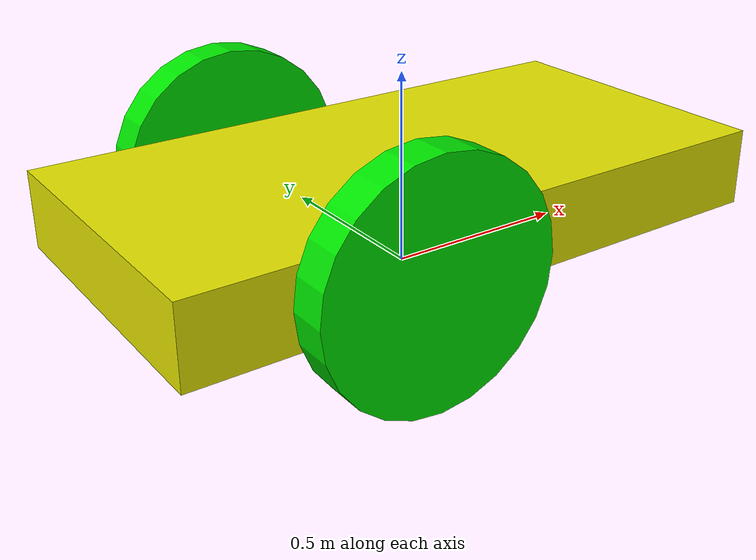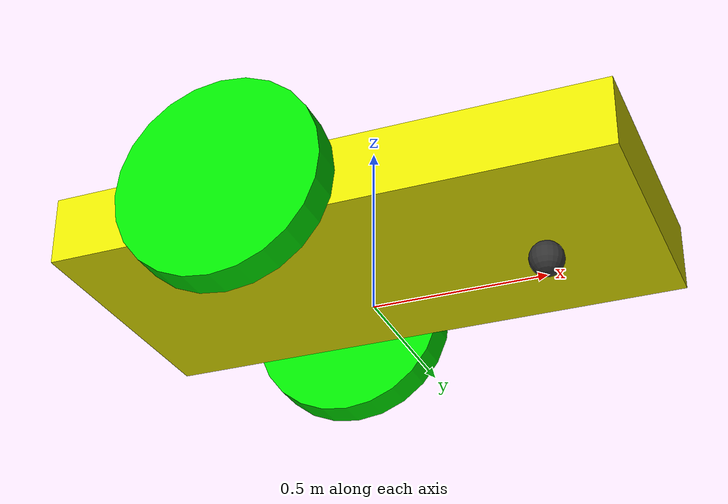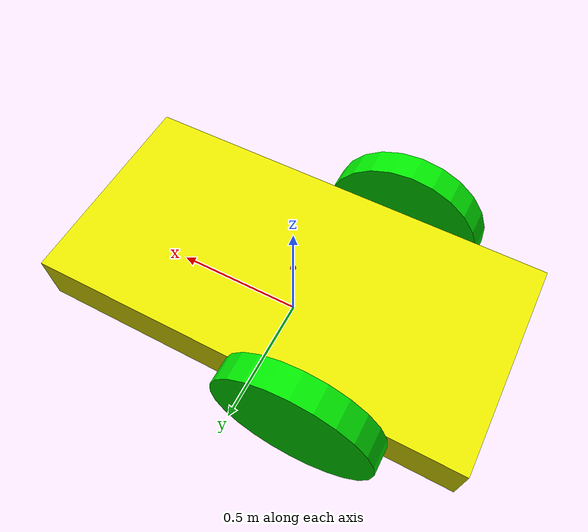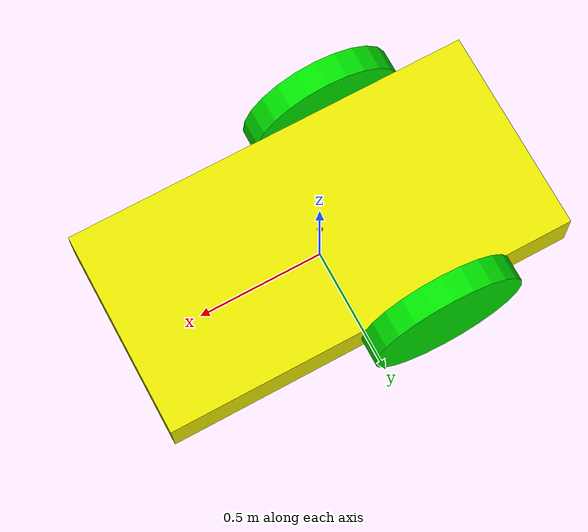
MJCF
<mujoco>
	<option gravity="0 0 -9.81" />
  <visual>
    <headlight diffuse="0.6 0.6 0.6" ambient="0.3 0.3 0.3" specular="0 0 0"/>
    <rgba haze="0.15 0.25 0.35 1"/>
    <global azimuth="-130" elevation="-20"/>
  </visual>
	<worldbody>
        <light diffuse=".5 .5 .5" pos="0 0 3" dir="0 0 -1"/>
		<body name = "chassis" pos="0 0 0.2" >
			<joint type="free"/>
			<site name="imu_site" pos="0 0 0.1" size="0.01" rgba="1 0 0 1"/>
			<geom type="box" size="0.8 0.4 0.1" rgba=".9 .9 0 1"/>
			<!-- This code is for ball cast. pos[0]: -->
			<geom name="ballcast" type="sphere" size="0.05" pos="0.5 0 -0.15" rgba="0.2 0.2 0.2 1" contype="1" conaffinity="1"/>
			<!-- Below code has euler angle 90. pos-->
			<body name="left-tire" pos="-0.25 0.45 0" euler='90 0 0'>
				<joint name = "left-wheel" type="hinge" axis="0 0 -1"/>
				<geom type="cylinder" density="500" size=".3 0.05" friction="1 0.1 0.1" rgba="0 .9 0 1"/>
			</body>
			<body name="right-tire" pos="-0.25 -0.45 0" euler='90 0 0'>
				<joint name = "right-wheel" type="hinge" axis="0 0 -1"/>
				<geom type="cylinder" density="500" size=".3 0.05"  friction="1 0.1 0.1" rgba="0 .9 0 1"/>
			</body>
		</body>
	</worldbody>
	<sensor>
		<!-- IMU sensor enable -->
		<accelerometer name="imu_acc" site="imu_site"/>
  		<gyro name="imu_gyro" site="imu_site"/>
	</sensor>

	<actuator>
	<!-- change kv value to apply motor deviation -->
		<velocity name="left-velocity-servo" joint="left-wheel" kv="100"/>
		<velocity name="right-velocity-servo" joint="right-wheel" kv="200"/>
	</actuator>
</mujoco>
